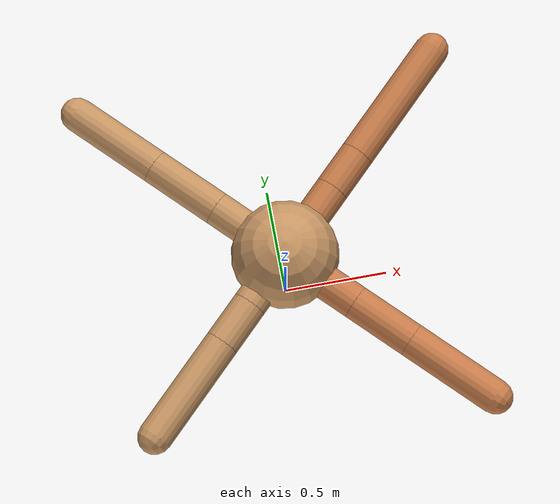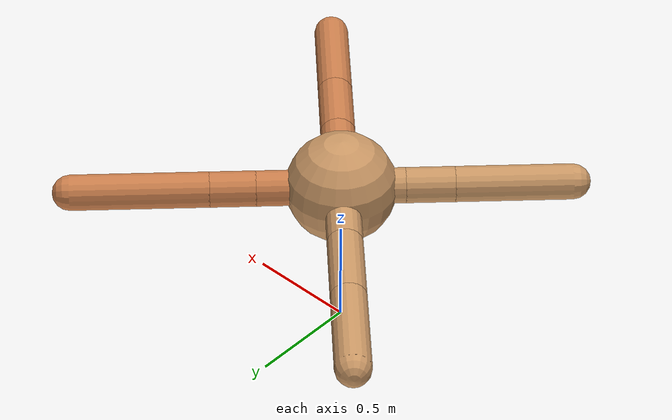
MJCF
<mujoco model="ant">
  <compiler angle="degree" coordinate="local" inertiafromgeom="true" />
  <option integrator="RK4" timestep="0.01" />
  <custom>
    <numeric data="0.0 0.0 0.55 1.0 0.0 0.0 0.0 0.0 1.0 0.0 -1.0 0.0 -1.0 0.0 1.0" name="init_qpos" />
  </custom>
  <default>
    <joint armature="1" damping="1" limited="true" />
    <geom conaffinity="0" condim="3" density="5.0" friction="1.5 0.1 0.1" margin="0.01" rgba="0.8 0.6 0.4 1" />
  </default>
  <worldbody>
    <body name="torso" pos="0 0 0.75">
      <geom name="torso_geom" pos="0 0 0" size="0.25" type="sphere" />

      <body name="front_left_leg" pos="0 0 0">
        <geom fromto="0.0 0.0 0.0 0.2670504797216517 0.2670504797216517 0.0" name="aux_1_geom" size="0.08" type="capsule" rgba=".8 .5 .3 1" />
        <body name="aux_1" pos="0.2670504797216517 0.2670504797216517 0.0">
          <joint axis="0 0 1" name="hip_1" pos="0.0 0.0 0.0" range="-40 40" type="hinge" />
          <geom fromto="0.0 0.0 0.0 0.14534536580326987 0.14534536580326987 0.0" name="left_leg_geom" size="0.08" type="capsule" rgba=".8 .5 .3 1" />
          <body pos="0.14534536580326987 0.14534536580326987 0.0" name="front_left_foot">
            <joint axis="-1 1 0" name="ankle_1" pos="0.0 0.0 0.0" range="30 100" type="hinge" />
            <geom fromto="0.0 0.0 0.0 0.43711208385702227 0.43711208385702227 0.0" name="left_ankle_geom" size="0.08" type="capsule" rgba=".8 .5 .3 1" />
          </body>
        </body>
      </body>
      <body name="front_right_leg" pos="0 0 0">
        <geom fromto="0.0 0.0 0.0 -0.2702484454855146 0.2702484454855146 0.0" name="aux_2_geom" size="0.08" type="capsule" />
        <body name="aux_2" pos="-0.2702484454855146 0.2702484454855146 0.0">
          <joint axis="0 0 1" name="hip_2" pos="0.0 0.0 0.0" range="-40 40" type="hinge" />
          <geom fromto="0.0 0.0 0.0 -0.2481076333011604 0.2481076333011604 0.0" name="right_leg_geom" size="0.08" type="capsule" />
          <body pos="-0.2481076333011604 0.2481076333011604 0.0" name="front_right_foot">
            <joint axis="1 1 0" name="ankle_2" pos="0.0 0.0 0.0" range="-100 -30" type="hinge" />
            <geom fromto="0.0 0.0 0.0 -0.31195838020820627 0.31195838020820627 0.0" name="right_ankle_geom" size="0.08" type="capsule" />
          </body>
        </body>
      </body>
      <body name="left_back_leg" pos="0 0 0">
        <geom fromto="0.0 0.0 0.0 -0.20108010281903296 -0.20108010281903296 0.0" name="aux_3_geom" size="0.08" type="capsule" />
        <body name="aux_3" pos="-0.20108010281903296 -0.20108010281903296 0.0">
          <joint axis="0 0 1" name="hip_3" pos="0.0 0.0 0.0" range="-40 40" type="hinge" />
          <geom fromto="0.0 0.0 0.0 -0.15558162364239245 -0.15558162364239245 0.0" name="back_leg_geom" size="0.08" type="capsule" />
          <body pos="-0.15558162364239245 -0.15558162364239245 0.0" name="left_back_foot">
            <joint axis="-1 1 0" name="ankle_3" pos="0.0 0.0 0.0" range="-100 -30" type="hinge" />
            <geom fromto="0.0 0.0 0.0 -0.3712737741028309 -0.3712737741028309 0.0" name="third_ankle_geom" size="0.08" type="capsule" />
          </body>
        </body>
      </body>
      <body name="right_back_leg" pos="0 0 0">
        <geom fromto="0.0 0.0 0.0 0.2771667482534821 -0.2771667482534821 0.0" name="aux_4_geom" size="0.08" type="capsule" rgba=".8 .5 .3 1" />
        <body name="aux_4" pos="0.2771667482534821 -0.2771667482534821 0.0">
          <joint axis="0 0 1" name="hip_4" pos="0.0 0.0 0.0" range="-40 40" type="hinge" />
          <geom fromto="0.0 0.0 0.0 0.21783947883579025 -0.21783947883579025 0.0" name="rightback_leg_geom" size="0.08" type="capsule" rgba=".8 .5 .3 1" />
          <body pos="0.21783947883579025 -0.21783947883579025 0.0" name="right_back_foot">
            <joint axis="1 1 0" name="ankle_4" pos="0.0 0.0 0.0" range="30 100" type="hinge" />
            <geom fromto="0.0 0.0 0.0 0.3254105338338066 -0.3254105338338066 0.0" name="fourth_ankle_geom" size="0.08" type="capsule" rgba=".8 .5 .3 1" />
          </body>
        </body>
      </body>
    </body>
  </worldbody>
  <actuator>
    <motor ctrllimited="true" ctrlrange="-1.0 1.0" joint="hip_4" gear="150" />
    <motor ctrllimited="true" ctrlrange="-1.0 1.0" joint="ankle_4" gear="150" />
    <motor ctrllimited="true" ctrlrange="-1.0 1.0" joint="hip_1" gear="150" />
    <motor ctrllimited="true" ctrlrange="-1.0 1.0" joint="ankle_1" gear="150" />
    <motor ctrllimited="true" ctrlrange="-1.0 1.0" joint="hip_2" gear="150" />
    <motor ctrllimited="true" ctrlrange="-1.0 1.0" joint="ankle_2" gear="150" />
    <motor ctrllimited="true" ctrlrange="-1.0 1.0" joint="hip_3" gear="150" />
    <motor ctrllimited="true" ctrlrange="-1.0 1.0" joint="ankle_3" gear="150" />
  </actuator>
</mujoco>
